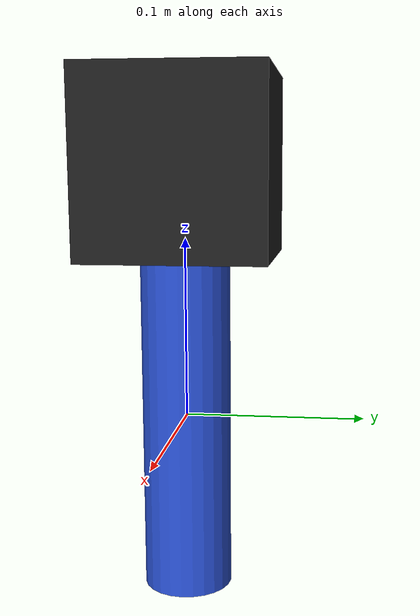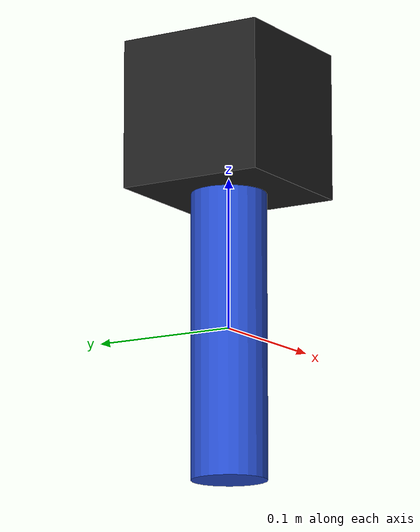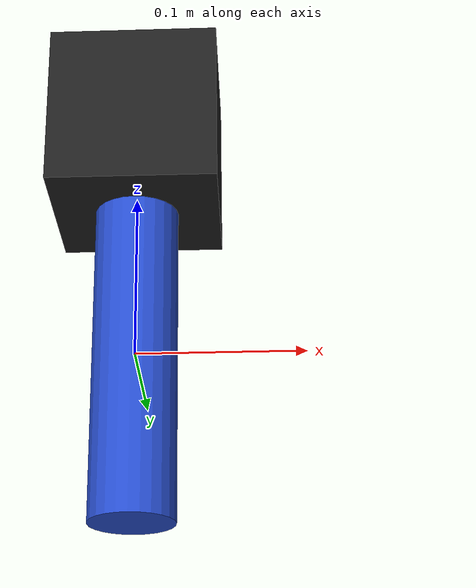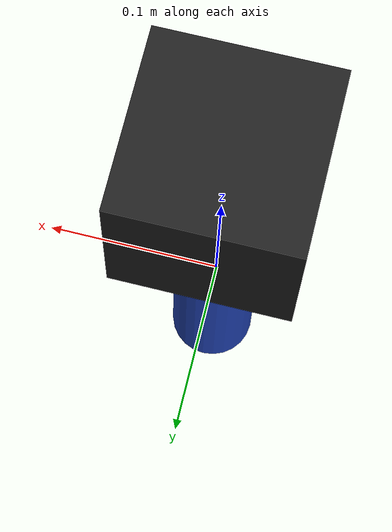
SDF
<?xml version='1.0'?>
<sdf version='1.7'>
  <model name='Gazebo_Vive_Wand'>
    <link name='link'>
      <inertial>
        <mass>0</mass>
        <inertia>
          <ixx>0</ixx>
          <ixy>0</ixy>
          <ixz>0</ixz>
          <iyy>0</iyy>
          <iyz>0</iyz>
          <izz>0</izz>
        </inertia>
        <pose>0 0 0 0 -0 0</pose>
      </inertial>
      <self_collide>0</self_collide>
      <enable_wind>0</enable_wind>
      <kinematic>0</kinematic>
      <pose>0 0 0 0 -0 0</pose>
      <gravity>0</gravity>
      <visual name='visual'>
        <geometry>
          <cylinder>
            <radius>0.025</radius>
            <length>0.2</length>
          </cylinder>
        </geometry>
        <material>
          <script>
            <name>Gazebo/Blue</name>
            <uri>file://media/materials/scripts/gazebo.material</uri>
          </script>
          <shader type='pixel'>
            <normal_map>__default__</normal_map>
          </shader>
          <emissive>0 0 0 1</emissive>
          <ambient>0.3 0.3 0.3 1</ambient>
          <diffuse>0.7 0.7 0.7 1</diffuse>
          <specular>0.01 0.01 0.01 1</specular>
          <lighting>0</lighting>
        </material>
        <pose>0 0 0 0 -0 0</pose>
        <transparency>0</transparency>
        <cast_shadows>1</cast_shadows>
      </visual>
      <collision name='collision'>
        <laser_retro>0</laser_retro>
        <max_contacts>10</max_contacts>
        <pose>0 0 0 0 -0 0</pose>
        <geometry>
          <cylinder>
            <radius>0.025</radius>
            <length>0.2</length>
          </cylinder>
        </geometry>
        <surface>
          <friction>
            <ode>
              <mu>1</mu>
              <mu2>1</mu2>
              <fdir1>0 0 0</fdir1>
              <slip1>0</slip1>
              <slip2>0</slip2>
            </ode>
            <torsional>
              <coefficient>1</coefficient>
              <patch_radius>0</patch_radius>
              <surface_radius>0</surface_radius>
              <use_patch_radius>1</use_patch_radius>
              <ode>
                <slip>0</slip>
              </ode>
            </torsional>
          </friction>
          <bounce>
            <restitution_coefficient>0</restitution_coefficient>
            <threshold>1e+06</threshold>
          </bounce>
          <contact>
            <collide_without_contact>0</collide_without_contact>
            <collide_without_contact_bitmask>1</collide_without_contact_bitmask>
            <collide_bitmask>1</collide_bitmask>
            <ode>
              <soft_cfm>0</soft_cfm>
              <soft_erp>0.2</soft_erp>
              <kp>1e+13</kp>
              <kd>1</kd>
              <max_vel>0.01</max_vel>
              <min_depth>0</min_depth>
            </ode>
            <bullet>
              <split_impulse>1</split_impulse>
              <split_impulse_penetration_threshold>-0.01</split_impulse_penetration_threshold>
              <soft_cfm>0</soft_cfm>
              <soft_erp>0.2</soft_erp>
              <kp>1e+13</kp>
              <kd>1</kd>
            </bullet>
          </contact>
        </surface>
      </collision>
    </link>
    <link name='link_0'>
      <inertial>
        <mass>0</mass>
        <inertia>
          <ixx>0</ixx>
          <ixy>0</ixy>
          <ixz>0</ixz>
          <iyy>0</iyy>
          <iyz>0</iyz>
          <izz>0</izz>
        </inertia>
        <pose>0 0 0 0 -0 0</pose>
      </inertial>
      <pose>0 -0 0.14 0 -0 0</pose>
      <gravity>0</gravity>
      <self_collide>0</self_collide>
      <kinematic>0</kinematic>
      <enable_wind>0</enable_wind>
      <visual name='visual'>
        <pose>0 0 0 0 -0 0</pose>
        <geometry>
          <box>
            <size>0.1 0.1 0.1</size>
          </box>
        </geometry>
        <material>
          <lighting>0</lighting>
          <script>
            <uri>file://media/materials/scripts/gazebo.material</uri>
            <name>Gazebo/Black</name>
          </script>
          <shader type='pixel'>
            <normal_map>__default__</normal_map>
          </shader>
          <emissive>0 0 0 1</emissive>
          <ambient>0.3 0.3 0.3 1</ambient>
          <diffuse>0.7 0.7 0.7 1</diffuse>
          <specular>0.01 0.01 0.01 1</specular>
        </material>
        <transparency>0</transparency>
        <cast_shadows>1</cast_shadows>
      </visual>
      <collision name='collision'>
        <laser_retro>0</laser_retro>
        <max_contacts>10</max_contacts>
        <pose>0 0 0 0 -0 0</pose>
        <geometry>
          <box>
            <size>0.1 0.1 0.1</size>
          </box>
        </geometry>
        <surface>
          <friction>
            <ode>
              <mu>1</mu>
              <mu2>1</mu2>
              <fdir1>0 0 0</fdir1>
              <slip1>0</slip1>
              <slip2>0</slip2>
            </ode>
            <torsional>
              <coefficient>1</coefficient>
              <patch_radius>0</patch_radius>
              <surface_radius>0</surface_radius>
              <use_patch_radius>1</use_patch_radius>
              <ode>
                <slip>0</slip>
              </ode>
            </torsional>
          </friction>
          <bounce>
            <restitution_coefficient>0</restitution_coefficient>
            <threshold>1e+06</threshold>
          </bounce>
          <contact>
            <collide_without_contact>0</collide_without_contact>
            <collide_without_contact_bitmask>1</collide_without_contact_bitmask>
            <collide_bitmask>1</collide_bitmask>
            <ode>
              <soft_cfm>0</soft_cfm>
              <soft_erp>0.2</soft_erp>
              <kp>1e+13</kp>
              <kd>1</kd>
              <max_vel>0.01</max_vel>
              <min_depth>0</min_depth>
            </ode>
            <bullet>
              <split_impulse>1</split_impulse>
              <split_impulse_penetration_threshold>-0.01</split_impulse_penetration_threshold>
              <soft_cfm>0</soft_cfm>
              <soft_erp>0.2</soft_erp>
              <kp>1e+13</kp>
              <kd>1</kd>
            </bullet>
          </contact>
        </surface>
      </collision>
    </link>
    <joint name='link_JOINT_1' type='fixed'>
      <parent>link</parent>
      <child>link_0</child>
      <pose>0 0 0 0 -0 0</pose>
      <physics>
        <ode>
          <limit>
            <cfm>0</cfm>
            <erp>0.2</erp>
          </limit>
          <suspension>
            <cfm>0</cfm>
            <erp>0.2</erp>
          </suspension>
        </ode>
      </physics>
    </joint>
    <static>0</static>
    <allow_auto_disable>1</allow_auto_disable>
  </model>
</sdf>
